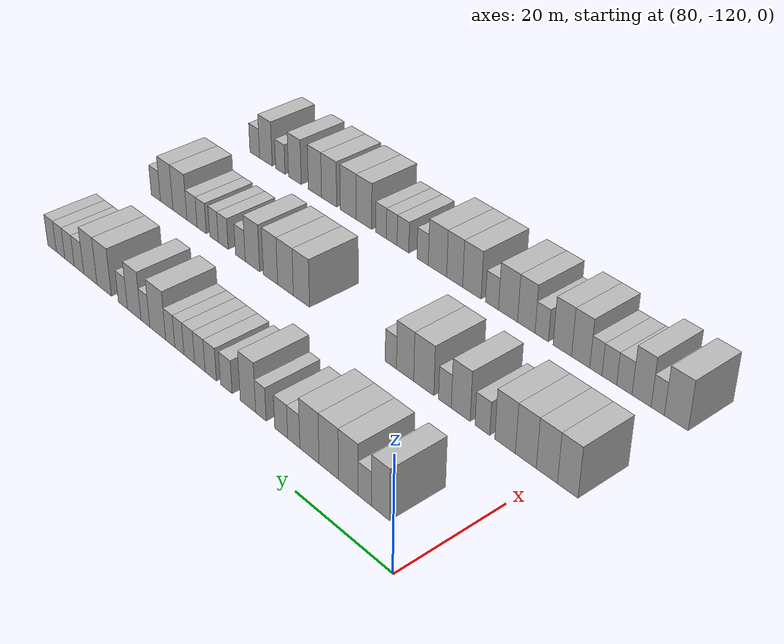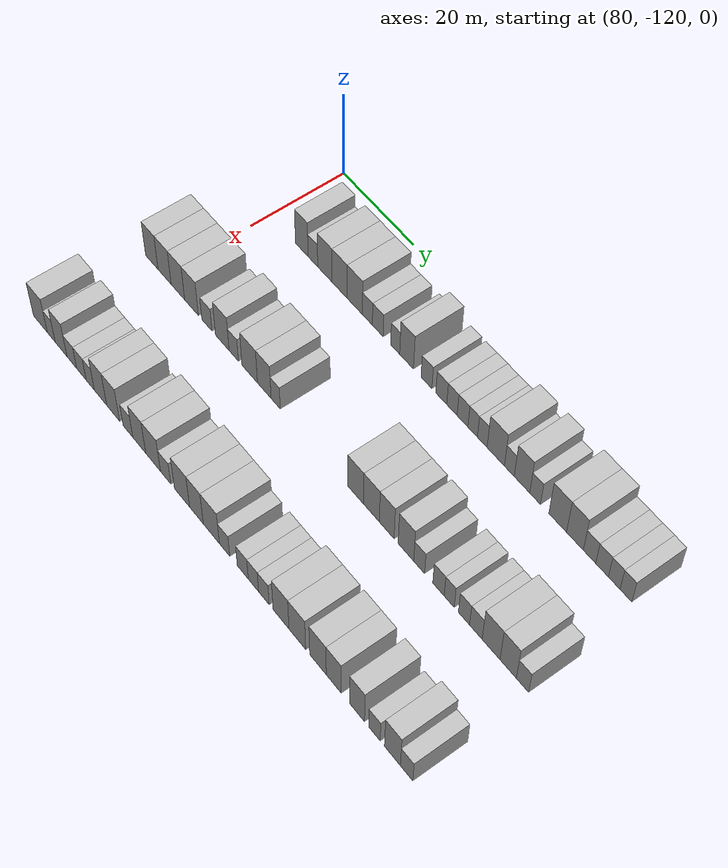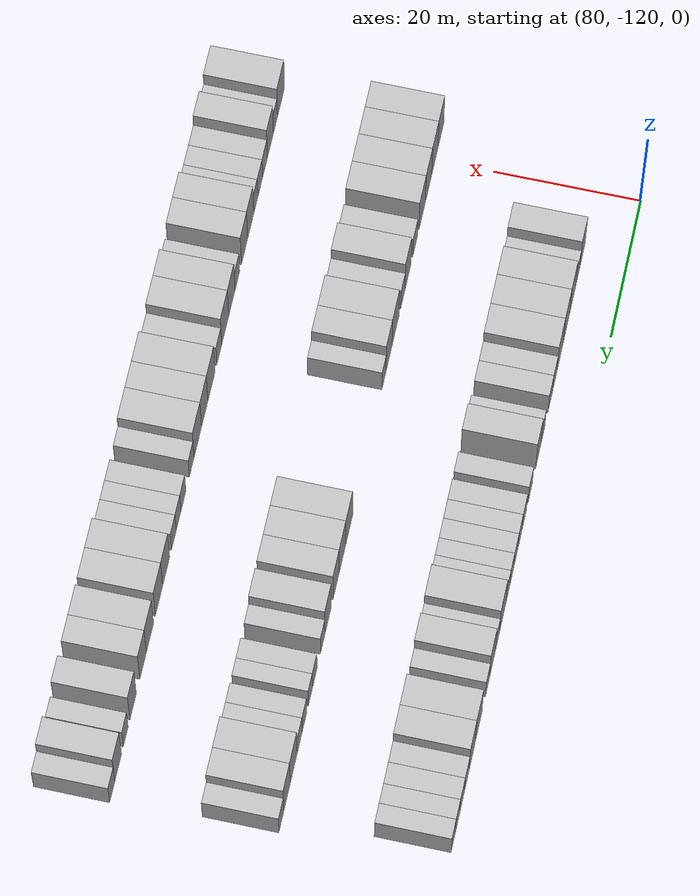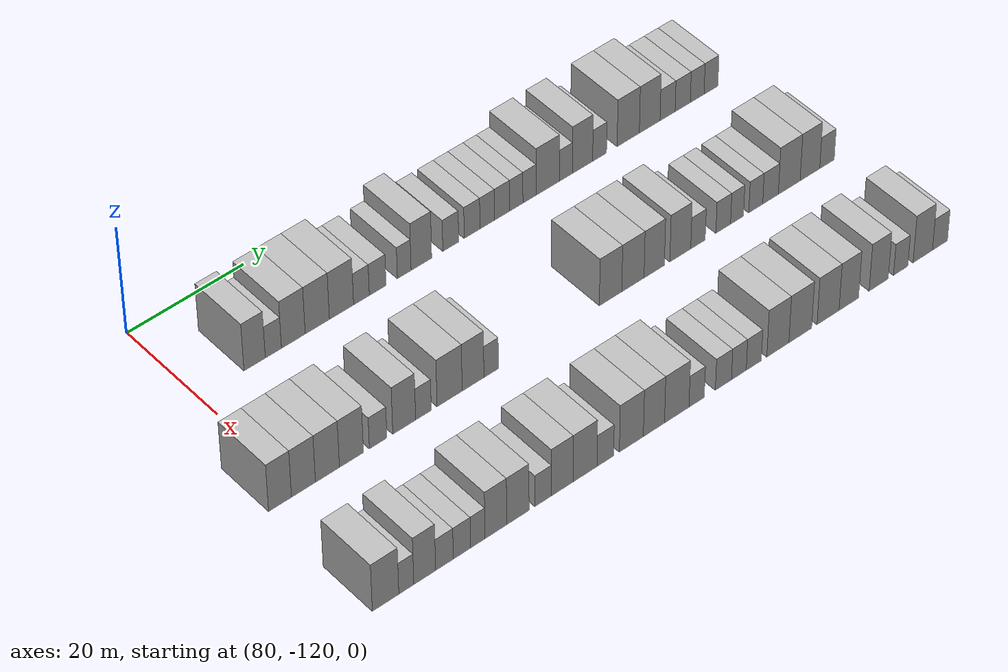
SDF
<sdf version="1.6">
 <world name="default">
  <model name="building_635">
   <static>1</static>
   <pose>91.0000 -110.5900 0 0.000000 0.000000 0.000000</pose>
   <link name="link">
    <pose>0 0 4.50 0 0 0</pose>
    <collision name="collision"><geometry><box><size>10.0000 3.6448 9.0000</size></box></geometry></collision>
    <visual name="visual">
     <cast_shadows>0</cast_shadows>
     <geometry><box><size>10.0000 3.6448 9.0000</size></box></geometry>
     <material>
      <script>
       <uri>model://HANNAS_wall/materials/scripts</uri>
       <uri>model://HANNAS_wall/materials/textures</uri>
       <name>vrc/HANNAS_wall</name>
      </script>
     </material>
    </visual>
   </link>
  </model>
  <model name="building_636">
   <static>1</static>
   <pose>91.0000 -107.3802 0 0.000000 0.000000 0.000000</pose>
   <link name="link">
    <pose>0 0 3.00 0 0 0</pose>
    <collision name="collision"><geometry><box><size>10.0000 2.7748 6.0000</size></box></geometry></collision>
    <visual name="visual">
     <cast_shadows>0</cast_shadows>
     <geometry><box><size>10.0000 2.7748 6.0000</size></box></geometry>
     <material>
      <script>
       <uri>model://HANNAS_wall/materials/scripts</uri>
       <uri>model://HANNAS_wall/materials/textures</uri>
       <name>vrc/HANNAS_wall</name>
      </script>
     </material>
    </visual>
   </link>
  </model>
  <model name="building_637">
   <static>1</static>
   <pose>91.0000 -103.9464 0 0.000000 0.000000 0.000000</pose>
   <link name="link">
    <pose>0 0 4.50 0 0 0</pose>
    <collision name="collision"><geometry><box><size>10.0000 4.0926 9.0000</size></box></geometry></collision>
    <visual name="visual">
     <cast_shadows>0</cast_shadows>
     <geometry><box><size>10.0000 4.0926 9.0000</size></box></geometry>
     <material>
      <script>
       <uri>model://HANNAS_wall/materials/scripts</uri>
       <uri>model://HANNAS_wall/materials/textures</uri>
       <name>vrc/HANNAS_wall</name>
      </script>
     </material>
    </visual>
   </link>
  </model>
  <model name="building_638">
   <static>1</static>
   <pose>91.0000 -99.7958 0 0.000000 0.000000 0.000000</pose>
   <link name="link">
    <pose>0 0 4.50 0 0 0</pose>
    <collision name="collision"><geometry><box><size>10.0000 4.2087 9.0000</size></box></geometry></collision>
    <visual name="visual">
     <cast_shadows>0</cast_shadows>
     <geometry><box><size>10.0000 4.2087 9.0000</size></box></geometry>
     <material>
      <script>
       <uri>model://HANNAS_wall/materials/scripts</uri>
       <uri>model://HANNAS_wall/materials/textures</uri>
       <name>vrc/HANNAS_wall</name>
      </script>
     </material>
    </visual>
   </link>
  </model>
  <model name="building_639">
   <static>1</static>
   <pose>91.0000 -95.5772 0 0.000000 0.000000 0.000000</pose>
   <link name="link">
    <pose>0 0 4.50 0 0 0</pose>
    <collision name="collision"><geometry><box><size>10.0000 4.2285 9.0000</size></box></geometry></collision>
    <visual name="visual">
     <cast_shadows>0</cast_shadows>
     <geometry><box><size>10.0000 4.2285 9.0000</size></box></geometry>
     <material>
      <script>
       <uri>model://HANNAS_wall/materials/scripts</uri>
       <uri>model://HANNAS_wall/materials/textures</uri>
       <name>vrc/HANNAS_wall</name>
      </script>
     </material>
    </visual>
   </link>
  </model>
  <model name="building_640">
   <static>1</static>
   <pose>91.0000 -92.0799 0 0.000000 0.000000 0.000000</pose>
   <link name="link">
    <pose>0 0 3.00 0 0 0</pose>
    <collision name="collision"><geometry><box><size>10.0000 2.7660 6.0000</size></box></geometry></collision>
    <visual name="visual">
     <cast_shadows>0</cast_shadows>
     <geometry><box><size>10.0000 2.7660 6.0000</size></box></geometry>
     <material>
      <script>
       <uri>model://HANNAS_wall/materials/scripts</uri>
       <uri>model://HANNAS_wall/materials/textures</uri>
       <name>vrc/HANNAS_wall</name>
      </script>
     </material>
    </visual>
   </link>
  </model>
  <model name="building_641">
   <static>1</static>
   <pose>91.0000 -89.2164 0 0.000000 0.000000 0.000000</pose>
   <link name="link">
    <pose>0 0 3.00 0 0 0</pose>
    <collision name="collision"><geometry><box><size>10.0000 2.9611 6.0000</size></box></geometry></collision>
    <visual name="visual">
     <cast_shadows>0</cast_shadows>
     <geometry><box><size>10.0000 2.9611 6.0000</size></box></geometry>
     <material>
      <script>
       <uri>model://HANNAS_wall/materials/scripts</uri>
       <uri>model://HANNAS_wall/materials/textures</uri>
       <name>vrc/HANNAS_wall</name>
      </script>
     </material>
    </visual>
   </link>
  </model>
  <model name="building_642">
   <static>1</static>
   <pose>91.0000 -84.5184 0 0.000000 0.000000 0.000000</pose>
   <link name="link">
    <pose>0 0 3.00 0 0 0</pose>
    <collision name="collision"><geometry><box><size>10.0000 2.4348 6.0000</size></box></geometry></collision>
    <visual name="visual">
     <cast_shadows>0</cast_shadows>
     <geometry><box><size>10.0000 2.4348 6.0000</size></box></geometry>
     <material>
      <script>
       <uri>model://HANNAS_wall/materials/scripts</uri>
       <uri>model://HANNAS_wall/materials/textures</uri>
       <name>vrc/HANNAS_wall</name>
      </script>
     </material>
    </visual>
   </link>
  </model>
  <model name="building_643">
   <static>1</static>
   <pose>91.0000 -81.4569 0 0.000000 0.000000 0.000000</pose>
   <link name="link">
    <pose>0 0 4.50 0 0 0</pose>
    <collision name="collision"><geometry><box><size>10.0000 3.6881 9.0000</size></box></geometry></collision>
    <visual name="visual">
     <cast_shadows>0</cast_shadows>
     <geometry><box><size>10.0000 3.6881 9.0000</size></box></geometry>
     <material>
      <script>
       <uri>model://HANNAS_wall/materials/scripts</uri>
       <uri>model://HANNAS_wall/materials/textures</uri>
       <name>vrc/HANNAS_wall</name>
      </script>
     </material>
    </visual>
   </link>
  </model>
  <model name="building_644">
   <static>1</static>
   <pose>91.0000 -76.1832 0 0.000000 0.000000 0.000000</pose>
   <link name="link">
    <pose>0 0 3.00 0 0 0</pose>
    <collision name="collision"><geometry><box><size>10.0000 2.8595 6.0000</size></box></geometry></collision>
    <visual name="visual">
     <cast_shadows>0</cast_shadows>
     <geometry><box><size>10.0000 2.8595 6.0000</size></box></geometry>
     <material>
      <script>
       <uri>model://HANNAS_wall/materials/scripts</uri>
       <uri>model://HANNAS_wall/materials/textures</uri>
       <name>vrc/HANNAS_wall</name>
      </script>
     </material>
    </visual>
   </link>
  </model>
  <model name="building_645">
   <static>1</static>
   <pose>91.0000 -72.3286 0 0.000000 0.000000 0.000000</pose>
   <link name="link">
    <pose>0 0 3.00 0 0 0</pose>
    <collision name="collision"><geometry><box><size>10.0000 2.8497 6.0000</size></box></geometry></collision>
    <visual name="visual">
     <cast_shadows>0</cast_shadows>
     <geometry><box><size>10.0000 2.8497 6.0000</size></box></geometry>
     <material>
      <script>
       <uri>model://HANNAS_wall/materials/scripts</uri>
       <uri>model://HANNAS_wall/materials/textures</uri>
       <name>vrc/HANNAS_wall</name>
      </script>
     </material>
    </visual>
   </link>
  </model>
  <model name="building_646">
   <static>1</static>
   <pose>91.0000 -69.5655 0 0.000000 0.000000 0.000000</pose>
   <link name="link">
    <pose>0 0 3.00 0 0 0</pose>
    <collision name="collision"><geometry><box><size>10.0000 2.6764 6.0000</size></box></geometry></collision>
    <visual name="visual">
     <cast_shadows>0</cast_shadows>
     <geometry><box><size>10.0000 2.6764 6.0000</size></box></geometry>
     <material>
      <script>
       <uri>model://HANNAS_wall/materials/scripts</uri>
       <uri>model://HANNAS_wall/materials/textures</uri>
       <name>vrc/HANNAS_wall</name>
      </script>
     </material>
    </visual>
   </link>
  </model>
  <model name="building_647">
   <static>1</static>
   <pose>91.0000 -66.8524 0 0.000000 0.000000 0.000000</pose>
   <link name="link">
    <pose>0 0 3.00 0 0 0</pose>
    <collision name="collision"><geometry><box><size>10.0000 2.7499 6.0000</size></box></geometry></collision>
    <visual name="visual">
     <cast_shadows>0</cast_shadows>
     <geometry><box><size>10.0000 2.7499 6.0000</size></box></geometry>
     <material>
      <script>
       <uri>model://HANNAS_wall/materials/scripts</uri>
       <uri>model://HANNAS_wall/materials/textures</uri>
       <name>vrc/HANNAS_wall</name>
      </script>
     </material>
    </visual>
   </link>
  </model>
  <model name="building_648">
   <static>1</static>
   <pose>91.0000 -64.2679 0 0.000000 0.000000 0.000000</pose>
   <link name="link">
    <pose>0 0 3.00 0 0 0</pose>
    <collision name="collision"><geometry><box><size>10.0000 2.4190 6.0000</size></box></geometry></collision>
    <visual name="visual">
     <cast_shadows>0</cast_shadows>
     <geometry><box><size>10.0000 2.4190 6.0000</size></box></geometry>
     <material>
      <script>
       <uri>model://HANNAS_wall/materials/scripts</uri>
       <uri>model://HANNAS_wall/materials/textures</uri>
       <name>vrc/HANNAS_wall</name>
      </script>
     </material>
    </visual>
   </link>
  </model>
  <model name="building_649">
   <static>1</static>
   <pose>91.0000 -61.8433 0 0.000000 0.000000 0.000000</pose>
   <link name="link">
    <pose>0 0 3.00 0 0 0</pose>
    <collision name="collision"><geometry><box><size>10.0000 2.4304 6.0000</size></box></geometry></collision>
    <visual name="visual">
     <cast_shadows>0</cast_shadows>
     <geometry><box><size>10.0000 2.4304 6.0000</size></box></geometry>
     <material>
      <script>
       <uri>model://HANNAS_wall/materials/scripts</uri>
       <uri>model://HANNAS_wall/materials/textures</uri>
       <name>vrc/HANNAS_wall</name>
      </script>
     </material>
    </visual>
   </link>
  </model>
  <model name="building_650">
   <static>1</static>
   <pose>91.0000 -58.4714 0 0.000000 0.000000 0.000000</pose>
   <link name="link">
    <pose>0 0 4.50 0 0 0</pose>
    <collision name="collision"><geometry><box><size>10.0000 4.3133 9.0000</size></box></geometry></collision>
    <visual name="visual">
     <cast_shadows>0</cast_shadows>
     <geometry><box><size>10.0000 4.3133 9.0000</size></box></geometry>
     <material>
      <script>
       <uri>model://HANNAS_wall/materials/scripts</uri>
       <uri>model://HANNAS_wall/materials/textures</uri>
       <name>vrc/HANNAS_wall</name>
      </script>
     </material>
    </visual>
   </link>
  </model>
  <model name="building_651">
   <static>1</static>
   <pose>91.0000 -55.1047 0 0.000000 0.000000 0.000000</pose>
   <link name="link">
    <pose>0 0 3.00 0 0 0</pose>
    <collision name="collision"><geometry><box><size>10.0000 2.4200 6.0000</size></box></geometry></collision>
    <visual name="visual">
     <cast_shadows>0</cast_shadows>
     <geometry><box><size>10.0000 2.4200 6.0000</size></box></geometry>
     <material>
      <script>
       <uri>model://HANNAS_wall/materials/scripts</uri>
       <uri>model://HANNAS_wall/materials/textures</uri>
       <name>vrc/HANNAS_wall</name>
      </script>
     </material>
    </visual>
   </link>
  </model>
  <model name="building_652">
   <static>1</static>
   <pose>91.0000 -51.9984 0 0.000000 0.000000 0.000000</pose>
   <link name="link">
    <pose>0 0 4.50 0 0 0</pose>
    <collision name="collision"><geometry><box><size>10.0000 3.7927 9.0000</size></box></geometry></collision>
    <visual name="visual">
     <cast_shadows>0</cast_shadows>
     <geometry><box><size>10.0000 3.7927 9.0000</size></box></geometry>
     <material>
      <script>
       <uri>model://HANNAS_wall/materials/scripts</uri>
       <uri>model://HANNAS_wall/materials/textures</uri>
       <name>vrc/HANNAS_wall</name>
      </script>
     </material>
    </visual>
   </link>
  </model>
  <model name="building_653">
   <static>1</static>
   <pose>91.0000 -48.7992 0 0.000000 0.000000 0.000000</pose>
   <link name="link">
    <pose>0 0 3.00 0 0 0</pose>
    <collision name="collision"><geometry><box><size>10.0000 2.6059 6.0000</size></box></geometry></collision>
    <visual name="visual">
     <cast_shadows>0</cast_shadows>
     <geometry><box><size>10.0000 2.6059 6.0000</size></box></geometry>
     <material>
      <script>
       <uri>model://HANNAS_wall/materials/scripts</uri>
       <uri>model://HANNAS_wall/materials/textures</uri>
       <name>vrc/HANNAS_wall</name>
      </script>
     </material>
    </visual>
   </link>
  </model>
  <model name="building_654">
   <static>1</static>
   <pose>91.0000 -43.3941 0 0.000000 0.000000 0.000000</pose>
   <link name="link">
    <pose>0 0 4.50 0 0 0</pose>
    <collision name="collision"><geometry><box><size>10.0000 4.2043 9.0000</size></box></geometry></collision>
    <visual name="visual">
     <cast_shadows>0</cast_shadows>
     <geometry><box><size>10.0000 4.2043 9.0000</size></box></geometry>
     <material>
      <script>
       <uri>model://HANNAS_wall/materials/scripts</uri>
       <uri>model://HANNAS_wall/materials/textures</uri>
       <name>vrc/HANNAS_wall</name>
      </script>
     </material>
    </visual>
   </link>
  </model>
  <model name="building_655">
   <static>1</static>
   <pose>91.0000 -39.3184 0 0.000000 0.000000 0.000000</pose>
   <link name="link">
    <pose>0 0 4.50 0 0 0</pose>
    <collision name="collision"><geometry><box><size>10.0000 3.9470 9.0000</size></box></geometry></collision>
    <visual name="visual">
     <cast_shadows>0</cast_shadows>
     <geometry><box><size>10.0000 3.9470 9.0000</size></box></geometry>
     <material>
      <script>
       <uri>model://HANNAS_wall/materials/scripts</uri>
       <uri>model://HANNAS_wall/materials/textures</uri>
       <name>vrc/HANNAS_wall</name>
      </script>
     </material>
    </visual>
   </link>
  </model>
  <model name="building_656">
   <static>1</static>
   <pose>91.0000 -35.8994 0 0.000000 0.000000 0.000000</pose>
   <link name="link">
    <pose>0 0 3.00 0 0 0</pose>
    <collision name="collision"><geometry><box><size>10.0000 2.8910 6.0000</size></box></geometry></collision>
    <visual name="visual">
     <cast_shadows>0</cast_shadows>
     <geometry><box><size>10.0000 2.8910 6.0000</size></box></geometry>
     <material>
      <script>
       <uri>model://HANNAS_wall/materials/scripts</uri>
       <uri>model://HANNAS_wall/materials/textures</uri>
       <name>vrc/HANNAS_wall</name>
      </script>
     </material>
    </visual>
   </link>
  </model>
  <model name="building_657">
   <static>1</static>
   <pose>91.0000 -32.9967 0 0.000000 0.000000 0.000000</pose>
   <link name="link">
    <pose>0 0 3.00 0 0 0</pose>
    <collision name="collision"><geometry><box><size>10.0000 2.9143 6.0000</size></box></geometry></collision>
    <visual name="visual">
     <cast_shadows>0</cast_shadows>
     <geometry><box><size>10.0000 2.9143 6.0000</size></box></geometry>
     <material>
      <script>
       <uri>model://HANNAS_wall/materials/scripts</uri>
       <uri>model://HANNAS_wall/materials/textures</uri>
       <name>vrc/HANNAS_wall</name>
      </script>
     </material>
    </visual>
   </link>
  </model>
  <model name="building_658">
   <static>1</static>
   <pose>91.0000 -30.2090 0 0.000000 0.000000 0.000000</pose>
   <link name="link">
    <pose>0 0 3.00 0 0 0</pose>
    <collision name="collision"><geometry><box><size>10.0000 2.6611 6.0000</size></box></geometry></collision>
    <visual name="visual">
     <cast_shadows>0</cast_shadows>
     <geometry><box><size>10.0000 2.6611 6.0000</size></box></geometry>
     <material>
      <script>
       <uri>model://HANNAS_wall/materials/scripts</uri>
       <uri>model://HANNAS_wall/materials/textures</uri>
       <name>vrc/HANNAS_wall</name>
      </script>
     </material>
    </visual>
   </link>
  </model>
  <model name="building_659">
   <static>1</static>
   <pose>91.0000 -27.5360 0 0.000000 0.000000 0.000000</pose>
   <link name="link">
    <pose>0 0 3.00 0 0 0</pose>
    <collision name="collision"><geometry><box><size>10.0000 2.6850 6.0000</size></box></geometry></collision>
    <visual name="visual">
     <cast_shadows>0</cast_shadows>
     <geometry><box><size>10.0000 2.6850 6.0000</size></box></geometry>
     <material>
      <script>
       <uri>model://HANNAS_wall/materials/scripts</uri>
       <uri>model://HANNAS_wall/materials/textures</uri>
       <name>vrc/HANNAS_wall</name>
      </script>
     </material>
    </visual>
   </link>
  </model>
  <model name="building_809">
   <static>1</static>
   <pose>113.0000 -123.6192 0 0.000000 0.000000 0.000000</pose>
   <link name="link">
    <pose>0 0 4.50 0 0 0</pose>
    <collision name="collision"><geometry><box><size>10.0000 3.8141 9.0000</size></box></geometry></collision>
    <visual name="visual">
     <cast_shadows>0</cast_shadows>
     <geometry><box><size>10.0000 3.8141 9.0000</size></box></geometry>
     <material>
      <script>
       <uri>model://HANNAS_wall/materials/scripts</uri>
       <uri>model://HANNAS_wall/materials/textures</uri>
       <name>vrc/HANNAS_wall</name>
      </script>
     </material>
    </visual>
   </link>
  </model>
  <model name="building_810">
   <static>1</static>
   <pose>113.0000 -119.7109 0 0.000000 0.000000 0.000000</pose>
   <link name="link">
    <pose>0 0 4.50 0 0 0</pose>
    <collision name="collision"><geometry><box><size>10.0000 4.0024 9.0000</size></box></geometry></collision>
    <visual name="visual">
     <cast_shadows>0</cast_shadows>
     <geometry><box><size>10.0000 4.0024 9.0000</size></box></geometry>
     <material>
      <script>
       <uri>model://HANNAS_wall/materials/scripts</uri>
       <uri>model://HANNAS_wall/materials/textures</uri>
       <name>vrc/HANNAS_wall</name>
      </script>
     </material>
    </visual>
   </link>
  </model>
  <model name="building_811">
   <static>1</static>
   <pose>113.0000 -115.6926 0 0.000000 0.000000 0.000000</pose>
   <link name="link">
    <pose>0 0 4.50 0 0 0</pose>
    <collision name="collision"><geometry><box><size>10.0000 4.0341 9.0000</size></box></geometry></collision>
    <visual name="visual">
     <cast_shadows>0</cast_shadows>
     <geometry><box><size>10.0000 4.0341 9.0000</size></box></geometry>
     <material>
      <script>
       <uri>model://HANNAS_wall/materials/scripts</uri>
       <uri>model://HANNAS_wall/materials/textures</uri>
       <name>vrc/HANNAS_wall</name>
      </script>
     </material>
    </visual>
   </link>
  </model>
  <model name="building_812">
   <static>1</static>
   <pose>113.0000 -111.6385 0 0.000000 0.000000 0.000000</pose>
   <link name="link">
    <pose>0 0 4.50 0 0 0</pose>
    <collision name="collision"><geometry><box><size>10.0000 4.0741 9.0000</size></box></geometry></collision>
    <visual name="visual">
     <cast_shadows>0</cast_shadows>
     <geometry><box><size>10.0000 4.0741 9.0000</size></box></geometry>
     <material>
      <script>
       <uri>model://HANNAS_wall/materials/scripts</uri>
       <uri>model://HANNAS_wall/materials/textures</uri>
       <name>vrc/HANNAS_wall</name>
      </script>
     </material>
    </visual>
   </link>
  </model>
  <model name="building_813">
   <static>1</static>
   <pose>113.0000 -107.1030 0 0.000000 0.000000 0.000000</pose>
   <link name="link">
    <pose>0 0 3.00 0 0 0</pose>
    <collision name="collision"><geometry><box><size>10.0000 2.9969 6.0000</size></box></geometry></collision>
    <visual name="visual">
     <cast_shadows>0</cast_shadows>
     <geometry><box><size>10.0000 2.9969 6.0000</size></box></geometry>
     <material>
      <script>
       <uri>model://HANNAS_wall/materials/scripts</uri>
       <uri>model://HANNAS_wall/materials/textures</uri>
       <name>vrc/HANNAS_wall</name>
      </script>
     </material>
    </visual>
   </link>
  </model>
  <model name="building_814">
   <static>1</static>
   <pose>113.0000 -102.6376 0 0.000000 0.000000 0.000000</pose>
   <link name="link">
    <pose>0 0 4.50 0 0 0</pose>
    <collision name="collision"><geometry><box><size>10.0000 3.9339 9.0000</size></box></geometry></collision>
    <visual name="visual">
     <cast_shadows>0</cast_shadows>
     <geometry><box><size>10.0000 3.9339 9.0000</size></box></geometry>
     <material>
      <script>
       <uri>model://HANNAS_wall/materials/scripts</uri>
       <uri>model://HANNAS_wall/materials/textures</uri>
       <name>vrc/HANNAS_wall</name>
      </script>
     </material>
    </visual>
   </link>
  </model>
  <model name="building_815">
   <static>1</static>
   <pose>113.0000 -99.3223 0 0.000000 0.000000 0.000000</pose>
   <link name="link">
    <pose>0 0 3.00 0 0 0</pose>
    <collision name="collision"><geometry><box><size>10.0000 2.6966 6.0000</size></box></geometry></collision>
    <visual name="visual">
     <cast_shadows>0</cast_shadows>
     <geometry><box><size>10.0000 2.6966 6.0000</size></box></geometry>
     <material>
      <script>
       <uri>model://HANNAS_wall/materials/scripts</uri>
       <uri>model://HANNAS_wall/materials/textures</uri>
       <name>vrc/HANNAS_wall</name>
      </script>
     </material>
    </visual>
   </link>
  </model>
  <model name="building_816">
   <static>1</static>
   <pose>113.0000 -94.7852 0 0.000000 0.000000 0.000000</pose>
   <link name="link">
    <pose>0 0 4.50 0 0 0</pose>
    <collision name="collision"><geometry><box><size>10.0000 4.3776 9.0000</size></box></geometry></collision>
    <visual name="visual">
     <cast_shadows>0</cast_shadows>
     <geometry><box><size>10.0000 4.3776 9.0000</size></box></geometry>
     <material>
      <script>
       <uri>model://HANNAS_wall/materials/scripts</uri>
       <uri>model://HANNAS_wall/materials/textures</uri>
       <name>vrc/HANNAS_wall</name>
      </script>
     </material>
    </visual>
   </link>
  </model>
  <model name="building_817">
   <static>1</static>
   <pose>113.0000 -90.6888 0 0.000000 0.000000 0.000000</pose>
   <link name="link">
    <pose>0 0 4.50 0 0 0</pose>
    <collision name="collision"><geometry><box><size>10.0000 3.8153 9.0000</size></box></geometry></collision>
    <visual name="visual">
     <cast_shadows>0</cast_shadows>
     <geometry><box><size>10.0000 3.8153 9.0000</size></box></geometry>
     <material>
      <script>
       <uri>model://HANNAS_wall/materials/scripts</uri>
       <uri>model://HANNAS_wall/materials/textures</uri>
       <name>vrc/HANNAS_wall</name>
      </script>
     </material>
    </visual>
   </link>
  </model>
  <model name="building_818">
   <static>1</static>
   <pose>113.0000 -87.5097 0 0.000000 0.000000 0.000000</pose>
   <link name="link">
    <pose>0 0 3.00 0 0 0</pose>
    <collision name="collision"><geometry><box><size>10.0000 2.5428 6.0000</size></box></geometry></collision>
    <visual name="visual">
     <cast_shadows>0</cast_shadows>
     <geometry><box><size>10.0000 2.5428 6.0000</size></box></geometry>
     <material>
      <script>
       <uri>model://HANNAS_wall/materials/scripts</uri>
       <uri>model://HANNAS_wall/materials/textures</uri>
       <name>vrc/HANNAS_wall</name>
      </script>
     </material>
    </visual>
   </link>
  </model>
  <model name="building_819">
   <static>1</static>
   <pose>113.0000 -66.1230 0 0.000000 0.000000 0.000000</pose>
   <link name="link">
    <pose>0 0 4.50 0 0 0</pose>
    <collision name="collision"><geometry><box><size>10.0000 4.0769 9.0000</size></box></geometry></collision>
    <visual name="visual">
     <cast_shadows>0</cast_shadows>
     <geometry><box><size>10.0000 4.0769 9.0000</size></box></geometry>
     <material>
      <script>
       <uri>model://HANNAS_wall/materials/scripts</uri>
       <uri>model://HANNAS_wall/materials/textures</uri>
       <name>vrc/HANNAS_wall</name>
      </script>
     </material>
    </visual>
   </link>
  </model>
  <model name="building_820">
   <static>1</static>
   <pose>113.0000 -62.0473 0 0.000000 0.000000 0.000000</pose>
   <link name="link">
    <pose>0 0 4.50 0 0 0</pose>
    <collision name="collision"><geometry><box><size>10.0000 4.0744 9.0000</size></box></geometry></collision>
    <visual name="visual">
     <cast_shadows>0</cast_shadows>
     <geometry><box><size>10.0000 4.0744 9.0000</size></box></geometry>
     <material>
      <script>
       <uri>model://HANNAS_wall/materials/scripts</uri>
       <uri>model://HANNAS_wall/materials/textures</uri>
       <name>vrc/HANNAS_wall</name>
      </script>
     </material>
    </visual>
   </link>
  </model>
  <model name="building_821">
   <static>1</static>
   <pose>113.0000 -58.1361 0 0.000000 0.000000 0.000000</pose>
   <link name="link">
    <pose>0 0 4.50 0 0 0</pose>
    <collision name="collision"><geometry><box><size>10.0000 3.7482 9.0000</size></box></geometry></collision>
    <visual name="visual">
     <cast_shadows>0</cast_shadows>
     <geometry><box><size>10.0000 3.7482 9.0000</size></box></geometry>
     <material>
      <script>
       <uri>model://HANNAS_wall/materials/scripts</uri>
       <uri>model://HANNAS_wall/materials/textures</uri>
       <name>vrc/HANNAS_wall</name>
      </script>
     </material>
    </visual>
   </link>
  </model>
  <model name="building_822">
   <static>1</static>
   <pose>113.0000 -53.3173 0 0.000000 0.000000 0.000000</pose>
   <link name="link">
    <pose>0 0 4.50 0 0 0</pose>
    <collision name="collision"><geometry><box><size>10.0000 3.8895 9.0000</size></box></geometry></collision>
    <visual name="visual">
     <cast_shadows>0</cast_shadows>
     <geometry><box><size>10.0000 3.8895 9.0000</size></box></geometry>
     <material>
      <script>
       <uri>model://HANNAS_wall/materials/scripts</uri>
       <uri>model://HANNAS_wall/materials/textures</uri>
       <name>vrc/HANNAS_wall</name>
      </script>
     </material>
    </visual>
   </link>
  </model>
  <model name="building_823">
   <static>1</static>
   <pose>113.0000 -50.0224 0 0.000000 0.000000 0.000000</pose>
   <link name="link">
    <pose>0 0 3.00 0 0 0</pose>
    <collision name="collision"><geometry><box><size>10.0000 2.7003 6.0000</size></box></geometry></collision>
    <visual name="visual">
     <cast_shadows>0</cast_shadows>
     <geometry><box><size>10.0000 2.7003 6.0000</size></box></geometry>
     <material>
      <script>
       <uri>model://HANNAS_wall/materials/scripts</uri>
       <uri>model://HANNAS_wall/materials/textures</uri>
       <name>vrc/HANNAS_wall</name>
      </script>
     </material>
    </visual>
   </link>
  </model>
  <model name="building_824">
   <static>1</static>
   <pose>113.0000 -45.2899 0 0.000000 0.000000 0.000000</pose>
   <link name="link">
    <pose>0 0 3.00 0 0 0</pose>
    <collision name="collision"><geometry><box><size>10.0000 2.7646 6.0000</size></box></geometry></collision>
    <visual name="visual">
     <cast_shadows>0</cast_shadows>
     <geometry><box><size>10.0000 2.7646 6.0000</size></box></geometry>
     <material>
      <script>
       <uri>model://HANNAS_wall/materials/scripts</uri>
       <uri>model://HANNAS_wall/materials/textures</uri>
       <name>vrc/HANNAS_wall</name>
      </script>
     </material>
    </visual>
   </link>
  </model>
  <model name="building_825">
   <static>1</static>
   <pose>113.0000 -42.6883 0 0.000000 0.000000 0.000000</pose>
   <link name="link">
    <pose>0 0 3.00 0 0 0</pose>
    <collision name="collision"><geometry><box><size>10.0000 2.4387 6.0000</size></box></geometry></collision>
    <visual name="visual">
     <cast_shadows>0</cast_shadows>
     <geometry><box><size>10.0000 2.4387 6.0000</size></box></geometry>
     <material>
      <script>
       <uri>model://HANNAS_wall/materials/scripts</uri>
       <uri>model://HANNAS_wall/materials/textures</uri>
       <name>vrc/HANNAS_wall</name>
      </script>
     </material>
    </visual>
   </link>
  </model>
  <model name="building_826">
   <static>1</static>
   <pose>113.0000 -39.1435 0 0.000000 0.000000 0.000000</pose>
   <link name="link">
    <pose>0 0 3.00 0 0 0</pose>
    <collision name="collision"><geometry><box><size>10.0000 2.6509 6.0000</size></box></geometry></collision>
    <visual name="visual">
     <cast_shadows>0</cast_shadows>
     <geometry><box><size>10.0000 2.6509 6.0000</size></box></geometry>
     <material>
      <script>
       <uri>model://HANNAS_wall/materials/scripts</uri>
       <uri>model://HANNAS_wall/materials/textures</uri>
       <name>vrc/HANNAS_wall</name>
      </script>
     </material>
    </visual>
   </link>
  </model>
  <model name="building_827">
   <static>1</static>
   <pose>113.0000 -36.3299 0 0.000000 0.000000 0.000000</pose>
   <link name="link">
    <pose>0 0 3.00 0 0 0</pose>
    <collision name="collision"><geometry><box><size>10.0000 2.9762 6.0000</size></box></geometry></collision>
    <visual name="visual">
     <cast_shadows>0</cast_shadows>
     <geometry><box><size>10.0000 2.9762 6.0000</size></box></geometry>
     <material>
      <script>
       <uri>model://HANNAS_wall/materials/scripts</uri>
       <uri>model://HANNAS_wall/materials/textures</uri>
       <name>vrc/HANNAS_wall</name>
      </script>
     </material>
    </visual>
   </link>
  </model>
  <model name="building_828">
   <static>1</static>
   <pose>113.0000 -32.7547 0 0.000000 0.000000 0.000000</pose>
   <link name="link">
    <pose>0 0 4.50 0 0 0</pose>
    <collision name="collision"><geometry><box><size>10.0000 4.1741 9.0000</size></box></geometry></collision>
    <visual name="visual">
     <cast_shadows>0</cast_shadows>
     <geometry><box><size>10.0000 4.1741 9.0000</size></box></geometry>
     <material>
      <script>
       <uri>model://HANNAS_wall/materials/scripts</uri>
       <uri>model://HANNAS_wall/materials/textures</uri>
       <name>vrc/HANNAS_wall</name>
      </script>
     </material>
    </visual>
   </link>
  </model>
  <model name="building_829">
   <static>1</static>
   <pose>113.0000 -28.7758 0 0.000000 0.000000 0.000000</pose>
   <link name="link">
    <pose>0 0 4.50 0 0 0</pose>
    <collision name="collision"><geometry><box><size>10.0000 3.7838 9.0000</size></box></geometry></collision>
    <visual name="visual">
     <cast_shadows>0</cast_shadows>
     <geometry><box><size>10.0000 3.7838 9.0000</size></box></geometry>
     <material>
      <script>
       <uri>model://HANNAS_wall/materials/scripts</uri>
       <uri>model://HANNAS_wall/materials/textures</uri>
       <name>vrc/HANNAS_wall</name>
      </script>
     </material>
    </visual>
   </link>
  </model>
  <model name="building_830">
   <static>1</static>
   <pose>113.0000 -25.4769 0 0.000000 0.000000 0.000000</pose>
   <link name="link">
    <pose>0 0 3.00 0 0 0</pose>
    <collision name="collision"><geometry><box><size>10.0000 2.8140 6.0000</size></box></geometry></collision>
    <visual name="visual">
     <cast_shadows>0</cast_shadows>
     <geometry><box><size>10.0000 2.8140 6.0000</size></box></geometry>
     <material>
      <script>
       <uri>model://HANNAS_wall/materials/scripts</uri>
       <uri>model://HANNAS_wall/materials/textures</uri>
       <name>vrc/HANNAS_wall</name>
      </script>
     </material>
    </visual>
   </link>
  </model>
  <model name="building_992">
   <static>1</static>
   <pose>135.0000 -123.8388 0 0.000000 0.000000 0.000000</pose>
   <link name="link">
    <pose>0 0 4.50 0 0 0</pose>
    <collision name="collision"><geometry><box><size>10.0000 4.3842 9.0000</size></box></geometry></collision>
    <visual name="visual">
     <cast_shadows>0</cast_shadows>
     <geometry><box><size>10.0000 4.3842 9.0000</size></box></geometry>
     <material>
      <script>
       <uri>model://HANNAS_wall/materials/scripts</uri>
       <uri>model://HANNAS_wall/materials/textures</uri>
       <name>vrc/HANNAS_wall</name>
      </script>
     </material>
    </visual>
   </link>
  </model>
  <model name="building_993">
   <static>1</static>
   <pose>135.0000 -120.4097 0 0.000000 0.000000 0.000000</pose>
   <link name="link">
    <pose>0 0 3.00 0 0 0</pose>
    <collision name="collision"><geometry><box><size>10.0000 2.4741 6.0000</size></box></geometry></collision>
    <visual name="visual">
     <cast_shadows>0</cast_shadows>
     <geometry><box><size>10.0000 2.4741 6.0000</size></box></geometry>
     <material>
      <script>
       <uri>model://HANNAS_wall/materials/scripts</uri>
       <uri>model://HANNAS_wall/materials/textures</uri>
       <name>vrc/HANNAS_wall</name>
      </script>
     </material>
    </visual>
   </link>
  </model>
  <model name="building_994">
   <static>1</static>
   <pose>135.0000 -117.3475 0 0.000000 0.000000 0.000000</pose>
   <link name="link">
    <pose>0 0 4.50 0 0 0</pose>
    <collision name="collision"><geometry><box><size>10.0000 3.6503 9.0000</size></box></geometry></collision>
    <visual name="visual">
     <cast_shadows>0</cast_shadows>
     <geometry><box><size>10.0000 3.6503 9.0000</size></box></geometry>
     <material>
      <script>
       <uri>model://HANNAS_wall/materials/scripts</uri>
       <uri>model://HANNAS_wall/materials/textures</uri>
       <name>vrc/HANNAS_wall</name>
      </script>
     </material>
    </visual>
   </link>
  </model>
  <model name="building_995">
   <static>1</static>
   <pose>135.0000 -114.0412 0 0.000000 0.000000 0.000000</pose>
   <link name="link">
    <pose>0 0 3.00 0 0 0</pose>
    <collision name="collision"><geometry><box><size>10.0000 2.9621 6.0000</size></box></geometry></collision>
    <visual name="visual">
     <cast_shadows>0</cast_shadows>
     <geometry><box><size>10.0000 2.9621 6.0000</size></box></geometry>
     <material>
      <script>
       <uri>model://HANNAS_wall/materials/scripts</uri>
       <uri>model://HANNAS_wall/materials/textures</uri>
       <name>vrc/HANNAS_wall</name>
      </script>
     </material>
    </visual>
   </link>
  </model>
  <model name="building_996">
   <static>1</static>
   <pose>135.0000 -111.1032 0 0.000000 0.000000 0.000000</pose>
   <link name="link">
    <pose>0 0 3.00 0 0 0</pose>
    <collision name="collision"><geometry><box><size>10.0000 2.9141 6.0000</size></box></geometry></collision>
    <visual name="visual">
     <cast_shadows>0</cast_shadows>
     <geometry><box><size>10.0000 2.9141 6.0000</size></box></geometry>
     <material>
      <script>
       <uri>model://HANNAS_wall/materials/scripts</uri>
       <uri>model://HANNAS_wall/materials/textures</uri>
       <name>vrc/HANNAS_wall</name>
      </script>
     </material>
    </visual>
   </link>
  </model>
  <model name="building_997">
   <static>1</static>
   <pose>135.0000 -108.4299 0 0.000000 0.000000 0.000000</pose>
   <link name="link">
    <pose>0 0 3.00 0 0 0</pose>
    <collision name="collision"><geometry><box><size>10.0000 2.4324 6.0000</size></box></geometry></collision>
    <visual name="visual">
     <cast_shadows>0</cast_shadows>
     <geometry><box><size>10.0000 2.4324 6.0000</size></box></geometry>
     <material>
      <script>
       <uri>model://HANNAS_wall/materials/scripts</uri>
       <uri>model://HANNAS_wall/materials/textures</uri>
       <name>vrc/HANNAS_wall</name>
      </script>
     </material>
    </visual>
   </link>
  </model>
  <model name="building_998">
   <static>1</static>
   <pose>135.0000 -105.3653 0 0.000000 0.000000 0.000000</pose>
   <link name="link">
    <pose>0 0 4.50 0 0 0</pose>
    <collision name="collision"><geometry><box><size>10.0000 3.6968 9.0000</size></box></geometry></collision>
    <visual name="visual">
     <cast_shadows>0</cast_shadows>
     <geometry><box><size>10.0000 3.6968 9.0000</size></box></geometry>
     <material>
      <script>
       <uri>model://HANNAS_wall/materials/scripts</uri>
       <uri>model://HANNAS_wall/materials/textures</uri>
       <name>vrc/HANNAS_wall</name>
      </script>
     </material>
    </visual>
   </link>
  </model>
  <model name="building_999">
   <static>1</static>
   <pose>135.0000 -101.6034 0 0.000000 0.000000 0.000000</pose>
   <link name="link">
    <pose>0 0 4.50 0 0 0</pose>
    <collision name="collision"><geometry><box><size>10.0000 3.8268 9.0000</size></box></geometry></collision>
    <visual name="visual">
     <cast_shadows>0</cast_shadows>
     <geometry><box><size>10.0000 3.8268 9.0000</size></box></geometry>
     <material>
      <script>
       <uri>model://HANNAS_wall/materials/scripts</uri>
       <uri>model://HANNAS_wall/materials/textures</uri>
       <name>vrc/HANNAS_wall</name>
      </script>
     </material>
    </visual>
   </link>
  </model>
  <model name="building_1000">
   <static>1</static>
   <pose>135.0000 -97.2776 0 0.000000 0.000000 0.000000</pose>
   <link name="link">
    <pose>0 0 3.00 0 0 0</pose>
    <collision name="collision"><geometry><box><size>10.0000 2.8248 6.0000</size></box></geometry></collision>
    <visual name="visual">
     <cast_shadows>0</cast_shadows>
     <geometry><box><size>10.0000 2.8248 6.0000</size></box></geometry>
     <material>
      <script>
       <uri>model://HANNAS_wall/materials/scripts</uri>
       <uri>model://HANNAS_wall/materials/textures</uri>
       <name>vrc/HANNAS_wall</name>
      </script>
     </material>
    </visual>
   </link>
  </model>
  <model name="building_1001">
   <static>1</static>
   <pose>135.0000 -93.9827 0 0.000000 0.000000 0.000000</pose>
   <link name="link">
    <pose>0 0 4.50 0 0 0</pose>
    <collision name="collision"><geometry><box><size>10.0000 3.7651 9.0000</size></box></geometry></collision>
    <visual name="visual">
     <cast_shadows>0</cast_shadows>
     <geometry><box><size>10.0000 3.7651 9.0000</size></box></geometry>
     <material>
      <script>
       <uri>model://HANNAS_wall/materials/scripts</uri>
       <uri>model://HANNAS_wall/materials/textures</uri>
       <name>vrc/HANNAS_wall</name>
      </script>
     </material>
    </visual>
   </link>
  </model>
  <model name="building_1002">
   <static>1</static>
   <pose>135.0000 -90.0026 0 0.000000 0.000000 0.000000</pose>
   <link name="link">
    <pose>0 0 4.50 0 0 0</pose>
    <collision name="collision"><geometry><box><size>10.0000 4.1951 9.0000</size></box></geometry></collision>
    <visual name="visual">
     <cast_shadows>0</cast_shadows>
     <geometry><box><size>10.0000 4.1951 9.0000</size></box></geometry>
     <material>
      <script>
       <uri>model://HANNAS_wall/materials/scripts</uri>
       <uri>model://HANNAS_wall/materials/textures</uri>
       <name>vrc/HANNAS_wall</name>
      </script>
     </material>
    </visual>
   </link>
  </model>
  <model name="building_1003">
   <static>1</static>
   <pose>135.0000 -86.4450 0 0.000000 0.000000 0.000000</pose>
   <link name="link">
    <pose>0 0 3.00 0 0 0</pose>
    <collision name="collision"><geometry><box><size>10.0000 2.9200 6.0000</size></box></geometry></collision>
    <visual name="visual">
     <cast_shadows>0</cast_shadows>
     <geometry><box><size>10.0000 2.9200 6.0000</size></box></geometry>
     <material>
      <script>
       <uri>model://HANNAS_wall/materials/scripts</uri>
       <uri>model://HANNAS_wall/materials/textures</uri>
       <name>vrc/HANNAS_wall</name>
      </script>
     </material>
    </visual>
   </link>
  </model>
  <model name="building_1004">
   <static>1</static>
   <pose>135.0000 -81.8636 0 0.000000 0.000000 0.000000</pose>
   <link name="link">
    <pose>0 0 4.50 0 0 0</pose>
    <collision name="collision"><geometry><box><size>10.0000 4.2428 9.0000</size></box></geometry></collision>
    <visual name="visual">
     <cast_shadows>0</cast_shadows>
     <geometry><box><size>10.0000 4.2428 9.0000</size></box></geometry>
     <material>
      <script>
       <uri>model://HANNAS_wall/materials/scripts</uri>
       <uri>model://HANNAS_wall/materials/textures</uri>
       <name>vrc/HANNAS_wall</name>
      </script>
     </material>
    </visual>
   </link>
  </model>
  <model name="building_1005">
   <static>1</static>
   <pose>135.0000 -77.8642 0 0.000000 0.000000 0.000000</pose>
   <link name="link">
    <pose>0 0 4.50 0 0 0</pose>
    <collision name="collision"><geometry><box><size>10.0000 3.7559 9.0000</size></box></geometry></collision>
    <visual name="visual">
     <cast_shadows>0</cast_shadows>
     <geometry><box><size>10.0000 3.7559 9.0000</size></box></geometry>
     <material>
      <script>
       <uri>model://HANNAS_wall/materials/scripts</uri>
       <uri>model://HANNAS_wall/materials/textures</uri>
       <name>vrc/HANNAS_wall</name>
      </script>
     </material>
    </visual>
   </link>
  </model>
  <model name="building_1006">
   <static>1</static>
   <pose>135.0000 -73.7952 0 0.000000 0.000000 0.000000</pose>
   <link name="link">
    <pose>0 0 4.50 0 0 0</pose>
    <collision name="collision"><geometry><box><size>10.0000 4.3822 9.0000</size></box></geometry></collision>
    <visual name="visual">
     <cast_shadows>0</cast_shadows>
     <geometry><box><size>10.0000 4.3822 9.0000</size></box></geometry>
     <material>
      <script>
       <uri>model://HANNAS_wall/materials/scripts</uri>
       <uri>model://HANNAS_wall/materials/textures</uri>
       <name>vrc/HANNAS_wall</name>
      </script>
     </material>
    </visual>
   </link>
  </model>
  <model name="building_1007">
   <static>1</static>
   <pose>135.0000 -70.2230 0 0.000000 0.000000 0.000000</pose>
   <link name="link">
    <pose>0 0 3.00 0 0 0</pose>
    <collision name="collision"><geometry><box><size>10.0000 2.7621 6.0000</size></box></geometry></collision>
    <visual name="visual">
     <cast_shadows>0</cast_shadows>
     <geometry><box><size>10.0000 2.7621 6.0000</size></box></geometry>
     <material>
      <script>
       <uri>model://HANNAS_wall/materials/scripts</uri>
       <uri>model://HANNAS_wall/materials/textures</uri>
       <name>vrc/HANNAS_wall</name>
      </script>
     </material>
    </visual>
   </link>
  </model>
  <model name="building_1008">
   <static>1</static>
   <pose>135.0000 -65.3811 0 0.000000 0.000000 0.000000</pose>
   <link name="link">
    <pose>0 0 3.00 0 0 0</pose>
    <collision name="collision"><geometry><box><size>10.0000 2.9218 6.0000</size></box></geometry></collision>
    <visual name="visual">
     <cast_shadows>0</cast_shadows>
     <geometry><box><size>10.0000 2.9218 6.0000</size></box></geometry>
     <material>
      <script>
       <uri>model://HANNAS_wall/materials/scripts</uri>
       <uri>model://HANNAS_wall/materials/textures</uri>
       <name>vrc/HANNAS_wall</name>
      </script>
     </material>
    </visual>
   </link>
  </model>
  <model name="building_1009">
   <static>1</static>
   <pose>135.0000 -62.5695 0 0.000000 0.000000 0.000000</pose>
   <link name="link">
    <pose>0 0 3.00 0 0 0</pose>
    <collision name="collision"><geometry><box><size>10.0000 2.7012 6.0000</size></box></geometry></collision>
    <visual name="visual">
     <cast_shadows>0</cast_shadows>
     <geometry><box><size>10.0000 2.7012 6.0000</size></box></geometry>
     <material>
      <script>
       <uri>model://HANNAS_wall/materials/scripts</uri>
       <uri>model://HANNAS_wall/materials/textures</uri>
       <name>vrc/HANNAS_wall</name>
      </script>
     </material>
    </visual>
   </link>
  </model>
  <model name="building_1010">
   <static>1</static>
   <pose>135.0000 -59.8383 0 0.000000 0.000000 0.000000</pose>
   <link name="link">
    <pose>0 0 3.00 0 0 0</pose>
    <collision name="collision"><geometry><box><size>10.0000 2.7613 6.0000</size></box></geometry></collision>
    <visual name="visual">
     <cast_shadows>0</cast_shadows>
     <geometry><box><size>10.0000 2.7613 6.0000</size></box></geometry>
     <material>
      <script>
       <uri>model://HANNAS_wall/materials/scripts</uri>
       <uri>model://HANNAS_wall/materials/textures</uri>
       <name>vrc/HANNAS_wall</name>
      </script>
     </material>
    </visual>
   </link>
  </model>
  <model name="building_1011">
   <static>1</static>
   <pose>135.0000 -55.4221 0 0.000000 0.000000 0.000000</pose>
   <link name="link">
    <pose>0 0 4.50 0 0 0</pose>
    <collision name="collision"><geometry><box><size>10.0000 4.0711 9.0000</size></box></geometry></collision>
    <visual name="visual">
     <cast_shadows>0</cast_shadows>
     <geometry><box><size>10.0000 4.0711 9.0000</size></box></geometry>
     <material>
      <script>
       <uri>model://HANNAS_wall/materials/scripts</uri>
       <uri>model://HANNAS_wall/materials/textures</uri>
       <name>vrc/HANNAS_wall</name>
      </script>
     </material>
    </visual>
   </link>
  </model>
  <model name="building_1012">
   <static>1</static>
   <pose>135.0000 -51.2717 0 0.000000 0.000000 0.000000</pose>
   <link name="link">
    <pose>0 0 4.50 0 0 0</pose>
    <collision name="collision"><geometry><box><size>10.0000 4.2297 9.0000</size></box></geometry></collision>
    <visual name="visual">
     <cast_shadows>0</cast_shadows>
     <geometry><box><size>10.0000 4.2297 9.0000</size></box></geometry>
     <material>
      <script>
       <uri>model://HANNAS_wall/materials/scripts</uri>
       <uri>model://HANNAS_wall/materials/textures</uri>
       <name>vrc/HANNAS_wall</name>
      </script>
     </material>
    </visual>
   </link>
  </model>
  <model name="building_1013">
   <static>1</static>
   <pose>135.0000 -46.0974 0 0.000000 0.000000 0.000000</pose>
   <link name="link">
    <pose>0 0 4.50 0 0 0</pose>
    <collision name="collision"><geometry><box><size>10.0000 4.1190 9.0000</size></box></geometry></collision>
    <visual name="visual">
     <cast_shadows>0</cast_shadows>
     <geometry><box><size>10.0000 4.1190 9.0000</size></box></geometry>
     <material>
      <script>
       <uri>model://HANNAS_wall/materials/scripts</uri>
       <uri>model://HANNAS_wall/materials/textures</uri>
       <name>vrc/HANNAS_wall</name>
      </script>
     </material>
    </visual>
   </link>
  </model>
  <model name="building_1014">
   <static>1</static>
   <pose>135.0000 -42.1995 0 0.000000 0.000000 0.000000</pose>
   <link name="link">
    <pose>0 0 4.50 0 0 0</pose>
    <collision name="collision"><geometry><box><size>10.0000 3.6768 9.0000</size></box></geometry></collision>
    <visual name="visual">
     <cast_shadows>0</cast_shadows>
     <geometry><box><size>10.0000 3.6768 9.0000</size></box></geometry>
     <material>
      <script>
       <uri>model://HANNAS_wall/materials/scripts</uri>
       <uri>model://HANNAS_wall/materials/textures</uri>
       <name>vrc/HANNAS_wall</name>
      </script>
     </material>
    </visual>
   </link>
  </model>
  <model name="building_1015">
   <static>1</static>
   <pose>135.0000 -36.5480 0 0.000000 0.000000 0.000000</pose>
   <link name="link">
    <pose>0 0 4.50 0 0 0</pose>
    <collision name="collision"><geometry><box><size>10.0000 3.6262 9.0000</size></box></geometry></collision>
    <visual name="visual">
     <cast_shadows>0</cast_shadows>
     <geometry><box><size>10.0000 3.6262 9.0000</size></box></geometry>
     <material>
      <script>
       <uri>model://HANNAS_wall/materials/scripts</uri>
       <uri>model://HANNAS_wall/materials/textures</uri>
       <name>vrc/HANNAS_wall</name>
      </script>
     </material>
    </visual>
   </link>
  </model>
  <model name="building_1016">
   <static>1</static>
   <pose>135.0000 -32.3650 0 0.000000 0.000000 0.000000</pose>
   <link name="link">
    <pose>0 0 3.00 0 0 0</pose>
    <collision name="collision"><geometry><box><size>10.0000 2.7397 6.0000</size></box></geometry></collision>
    <visual name="visual">
     <cast_shadows>0</cast_shadows>
     <geometry><box><size>10.0000 2.7397 6.0000</size></box></geometry>
     <material>
      <script>
       <uri>model://HANNAS_wall/materials/scripts</uri>
       <uri>model://HANNAS_wall/materials/textures</uri>
       <name>vrc/HANNAS_wall</name>
      </script>
     </material>
    </visual>
   </link>
  </model>
  <model name="building_1017">
   <static>1</static>
   <pose>135.0000 -28.1310 0 0.000000 0.000000 0.000000</pose>
   <link name="link">
    <pose>0 0 4.50 0 0 0</pose>
    <collision name="collision"><geometry><box><size>10.0000 3.7283 9.0000</size></box></geometry></collision>
    <visual name="visual">
     <cast_shadows>0</cast_shadows>
     <geometry><box><size>10.0000 3.7283 9.0000</size></box></geometry>
     <material>
      <script>
       <uri>model://HANNAS_wall/materials/scripts</uri>
       <uri>model://HANNAS_wall/materials/textures</uri>
       <name>vrc/HANNAS_wall</name>
      </script>
     </material>
    </visual>
   </link>
  </model>
  <model name="building_1018">
   <static>1</static>
   <pose>135.0000 -24.8167 0 0.000000 0.000000 0.000000</pose>
   <link name="link">
    <pose>0 0 3.00 0 0 0</pose>
    <collision name="collision"><geometry><box><size>10.0000 2.9004 6.0000</size></box></geometry></collision>
    <visual name="visual">
     <cast_shadows>0</cast_shadows>
     <geometry><box><size>10.0000 2.9004 6.0000</size></box></geometry>
     <material>
      <script>
       <uri>model://HANNAS_wall/materials/scripts</uri>
       <uri>model://HANNAS_wall/materials/textures</uri>
       <name>vrc/HANNAS_wall</name>
      </script>
     </material>
    </visual>
   </link>
  </model>
 </world>
</sdf>
